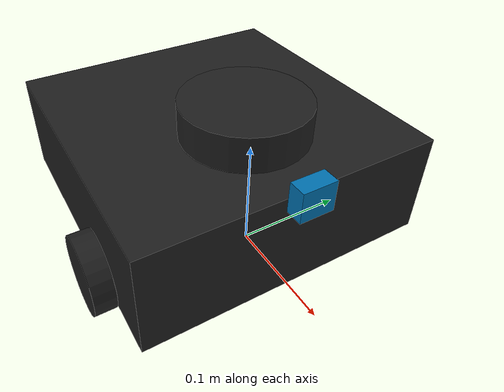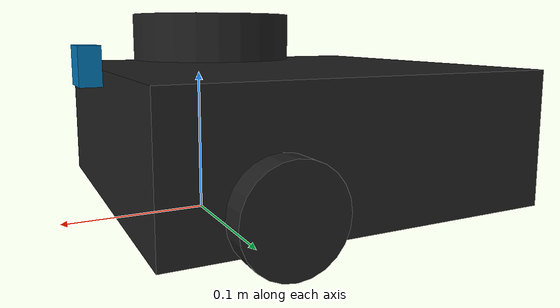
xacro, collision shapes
<?xml version="1.0"?>
<!-- TurtleBot3 Manipulation -->
<robot name="turtlebot3_manipulation" xmlns:xacro="http://ros.org/wiki/xacro">
  <xacro:arg name="gazebo" default="True"/>
  <xacro:arg name="offroad_turtlebot" default="False"/>
  <xacro:arg name="scale_factor" default="1.0"/>
  <xacro:property name="sf" value="$(arg scale_factor)"/>

  <!--  TURTLEBOT3 WAFFLE PI  -->
  <xacro:include filename="$(find turtlebot3_manipulation_description)/urdf/turtlebot3_pi_base.xacro"/>

  <!--  TURTLEBOT3 WAFFLE PI Sensors (for whatever reason, IMU needs to be declared at end of file to prevent
  gazebo from crashing  -->
  <xacro:include filename="$(find turtlebot3_manipulation_description)/urdf/turtlebot3_pi_gazebo.xacro"/>

</robot>

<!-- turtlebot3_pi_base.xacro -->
<!-- TurtleBot3 Manipulation -->
<robot name="turtlebot3_pi" xmlns:xacro="http://ros.org/wiki/xacro">

  <!--  if gazebo=True, enable SDF specific tags  -->
  <xacro:arg name="gazebo" default="True"/>
  <xacro:arg name="offroad_turtlebot" default="False"/>
  <xacro:arg name="scale_factor" default="1.0"/>
  <xacro:property name="sf" value="$(arg scale_factor)"/>

  <!--  Begin Model Description  -->
  <link name="base_footprint"/>
  <link name="base_link">
    <visual>
      <origin xyz="-0.064 0 0.0" rpy="0 0 0"/>
      <geometry>
        <mesh filename="file://$(find turtlebot3_description)/meshes/bases/waffle_pi_base.stl" scale="0.001 0.001 0.001"/>
      </geometry>
      <material name="light_black"/>
    </visual>

    <collision>
      <origin xyz="-0.064 0 0.047" rpy="0 0 0"/>
      <geometry>
        <box size="0.266 0.266 0.094"/>
      </geometry>
    </collision>

    <inertial>
      <origin xyz="0 0 0" rpy="0 0 0"/>
      <mass value="1.3729096e+00"/>
      <inertia ixx="8.7002718e-03" ixy="-4.7576583e-05" ixz="1.1160499e-04"
               iyy="8.6195418e-03" iyz="-3.5422299e-06"
               izz="1.4612727e-02" />
    </inertial>
  </link>
  <joint name="base_joint" type="fixed">
    <parent link="base_footprint"/>
    <child link="base_link" />
    <origin xyz="0 0 0.010" rpy="0 0 0"/>
  </joint>

  <xacro:if value="$(arg offroad_turtlebot)">
    <link name="wheel_left_link">
      <visual>
        <origin xyz="0 0 0" rpy="1.57 0 0"/>
        <geometry>
          <mesh filename="file://$(find turtlebot3_description)/meshes/wheels/left_tire.stl" scale="${0.001 * sf} ${0.001 * sf} ${0.001 * sf}"/>
        </geometry>
        <material name="dark"/>
      </visual>

      <collision>
        <origin xyz="0 0 0" rpy="0 0 0"/>
        <geometry>
          <cylinder length="${0.018 * sf}" radius="${sf * 0.033}"/>
        </geometry>
      </collision>

      <inertial>
        <origin xyz="0 0 0" />
        <mass value="${sf**3 * 2.8498940e-02}" />
        <inertia ixx="${sf**3 * 1.1175580e-05}" ixy="${sf**3 * -4.2369783e-11}" ixz="${sf**3 * -5.9381719e-09}"
                 iyy="${sf**3 * 1.1192413e-05}" iyz="${sf**3 * -1.4400107e-11}"
                 izz="${sf**3 * 2.0712558e-05}" />
        </inertial>
    </link>
    <joint name="wheel_left_joint" type="continuous">
      <parent link="base_link"/>
      <child link="wheel_left_link"/>
      <origin xyz="0.0 0.144 0.023" rpy="-1.57 0 0"/>
      <axis xyz="0 0 1"/>
      <xacro:if value="$(arg gazebo)">
        <dynamics damping="0.2" friction="0.5"/>
      </xacro:if>
    </joint>

    <link name="wheel_right_link">
      <visual>
        <origin xyz="0 0 0" rpy="1.57 0 0"/>
        <geometry>
          <mesh filename="file://$(find turtlebot3_description)/meshes/wheels/left_tire.stl" scale="${0.001 * sf} ${0.001 * sf} ${0.001 * sf}"/>
        </geometry>
        <material name="dark"/>
      </visual>

      <collision>
        <origin xyz="0 0 0" rpy="0 0 0"/>
        <geometry>
          <cylinder length="${0.018 * sf}" radius="${sf * 0.033}"/>
        </geometry>
      </collision>

      <inertial>
        <origin xyz="0 0 0" />
        <mass value="${sf**3 * 2.8498940e-02}" />
        <inertia ixx="${sf**3 * 1.1175580e-05}" ixy="${sf**3 * -4.2369783e-11}" ixz="${sf**3 * -5.9381719e-09}"
                 iyy="${sf**3 * 1.1192413e-05}" iyz="${sf**3 * -1.4400107e-11}"
                 izz="${sf**3 * 2.0712558e-05}" />
        </inertial>
    </link>
    <joint name="wheel_right_joint" type="continuous">
      <parent link="base_link"/>
      <child link="wheel_right_link"/>
      <origin xyz="0.0 -0.144 0.023" rpy="-1.57 0 0"/>
      <axis xyz="0 0 1"/>
      <xacro:if value="$(arg gazebo)">
        <dynamics damping="0.2" friction="0.5"/>
      </xacro:if>
    </joint>

    <link name="caster_back_right_link">

      <visual>
        <origin xyz="0 0 0" rpy="0 0 0"/>
        <geometry>
          <sphere radius="${0.033 * sf - 0.028}"/>
        </geometry>
      </visual>

      <collision>
        <origin xyz="0 0 0" rpy="0 0 0"/>
        <geometry>
          <sphere radius="${0.033 * sf - 0.028}"/>
        </geometry>
      </collision>

      <inertial>
        <origin xyz="0 0 0" />
        <mass value="${sf**3 * 0.005}" />
        <inertia ixx="${sf**3 * 0.001}" ixy="${sf**3 * 0.0}" ixz="${sf**3 * 0.0}"
                 iyy="${sf**3 * 0.001}" iyz="${sf**3 * 0.0}"
                 izz="${sf**3 * 0.001}" />
      </inertial>
    </link>
    <xacro:if value="$(arg gazebo)">
      <!-- Represent ball joint by 2 additional links and joints   -->
      <link name="caster_back_right_link_proxy1">
        <inertial>
          <origin xyz="0 0 0" />
          <mass value="0.005" />
          <inertia ixx="0.001" ixy="0.0" ixz="0.0"
                   iyy="0.001" iyz="0.0"
                   izz="0.001" />
        </inertial>
      </link>

      <link name="caster_back_right_link_proxy2">
        <inertial>
          <origin xyz="0 0 0" />
          <mass value="0.005" />
          <inertia ixx="0.001" ixy="0.0" ixz="0.0"
                   iyy="0.001" iyz="0.0"
                   izz="0.001" />
        </inertial>
      </link>

      <joint name="caster_back_right_joint_x" type="continuous">
        <parent link="base_link"/>
        <child link="caster_back_right_link_proxy1"/>
        <origin xyz="-0.177 -0.064 -0.005" rpy="-1.57 0 0"/>
        <axis xyz="1 0 0"/>
        <dynamics damping="0.1" friction="0.2"/>
      </joint>
      <joint name="caster_back_right_joint_y" type="continuous">
        <parent link="caster_back_right_link_proxy1"/>
        <child link="caster_back_right_link_proxy2"/>
        <origin xyz="0 0 0" rpy="0 0 0"/>
        <axis xyz="0 1 0"/>
        <dynamics damping="0.1" friction="0.2"/>
      </joint>
      <joint name="caster_back_right_joint_z" type="continuous">
        <parent link="caster_back_right_link_proxy2"/>
        <child link="caster_back_right_link"/>
        <origin xyz="0 0 0" rpy="0 0 0"/>
        <axis xyz="0 0 1"/>
       <dynamics damping="0.1" friction="0.2"/>
      </joint>
    </xacro:if>

    <xacro:if value="${not $(arg gazebo)}">
      <joint name="caster_back_right_joint" type="fixed">
        <parent link="base_link"/>
        <child link="caster_back_right_link"/>
        <origin xyz="-0.177 -0.064 -0.004" rpy="-1.57 0 0"/>
      </joint>
    </xacro:if>

    <link name="caster_back_left_link">

      <visual>
        <origin xyz="0 0 0" rpy="0 0 0"/>
        <geometry>
          <sphere radius="${0.033 * sf - 0.028}"/>
        </geometry>
      </visual>

      <collision>
        <origin xyz="0 0 0" rpy="0 0 0"/>
        <geometry>
          <sphere radius="${0.033 * sf - 0.028}"/>
        </geometry>
      </collision>

      <inertial>
        <origin xyz="0 0 0" />
        <mass value="${sf**3 * 0.005}" />
        <inertia ixx="${sf**3 * 0.001}" ixy="${sf**3 * 0.0}" ixz="${sf**3 * 0.0}"
                 iyy="${sf**3 * 0.001}" iyz="${sf**3 * 0.0}"
                 izz="${sf**3 * 0.001}" />
      </inertial>
    </link>
    <xacro:if value="$(arg gazebo)">
      <!-- Represent ball joint by 2 additional links and joints   -->
      <link name="caster_back_left_link_proxy1">
        <inertial>
          <origin xyz="0 0 0" />
          <mass value="0.005" />
          <inertia ixx="0.001" ixy="0.0" ixz="0.0"
                   iyy="0.001" iyz="0.0"
                   izz="0.001" />
        </inertial>
      </link>

      <link name="caster_back_left_link_proxy2">
        <inertial>
          <origin xyz="0 0 0" />
          <mass value="0.005" />
          <inertia ixx="0.001" ixy="0.0" ixz="0.0"
                   iyy="0.001" iyz="0.0"
                   izz="0.001" />
        </inertial>
      </link>

      <joint name="caster_back_left_joint_x" type="continuous">
        <parent link="base_link"/>
        <child link="caster_back_left_link_proxy1"/>
        <origin xyz="-0.177 0.064 -0.005" rpy="-1.57 0 0"/>
        <axis xyz="1 0 0"/>
        <dynamics damping="0.1" friction="0.2"/>
      </joint>
      <joint name="caster_back_left_joint_y" type="continuous">
        <parent link="caster_back_left_link_proxy1"/>
        <child link="caster_back_left_link_proxy2"/>
        <origin xyz="0 0 0" rpy="0 0 0"/>
        <axis xyz="0 1 0"/>
        <dynamics damping="0.1" friction="0.2"/>
      </joint>
      <joint name="caster_back_left_joint_z" type="continuous">
        <parent link="caster_back_left_link_proxy2"/>
        <child link="caster_back_left_link"/>
        <origin xyz="0 0 0" rpy="0 0 0"/>
        <axis xyz="0 0 1"/>
        <dynamics damping="0.1" friction="0.2"/>
      </joint>
    </xacro:if>

    <xacro:if value="${not $(arg gazebo)}">
      <joint name="caster_back_left_joint" type="fixed">
        <parent link="base_link"/>
        <child link="caster_back_left_link"/>
        <origin xyz="-0.177 0.064 -0.004" rpy="-1.57 0 0"/>
      </joint>
    </xacro:if>

  </xacro:if>

  <xacro:if value="${not $(arg offroad_turtlebot)}">
    <link name="wheel_left_link">
      <visual>
        <origin xyz="0 0 0" rpy="1.57 0 0"/>
        <geometry>
          <mesh filename="file://$(find turtlebot3_description)/meshes/wheels/left_tire.stl" scale="0.001 0.001 0.001"/>
        </geometry>
        <material name="dark"/>
      </visual>

      <collision>
        <origin xyz="0 0 0" rpy="0 0 0"/>
        <geometry>
          <cylinder length="0.018" radius="0.033"/>
        </geometry>
      </collision>

      <inertial>
        <origin xyz="0 0 0" />
        <mass value="2.8498940e-02" />
        <inertia ixx="1.1175580e-05" ixy="-4.2369783e-11" ixz="-5.9381719e-09"
                 iyy="1.1192413e-05" iyz="-1.4400107e-11"
                 izz="2.0712558e-05" />
        </inertial>
    </link>
    <joint name="wheel_left_joint" type="continuous">
      <parent link="base_link"/>
      <child link="wheel_left_link"/>
      <origin xyz="0.0 0.144 0.023" rpy="-1.57 0 0"/>
      <axis xyz="0 0 1"/>
      <xacro:if value="$(arg gazebo)">
        <dynamics damping="0.2" friction="0.5"/>
      </xacro:if>
    </joint>

    <link name="wheel_right_link">
      <visual>
        <origin xyz="0 0 0" rpy="1.57 0 0"/>
        <geometry>
          <mesh filename="file://$(find turtlebot3_description)/meshes/wheels/right_tire.stl" scale="0.001 0.001 0.001"/>
        </geometry>
        <material name="dark"/>
      </visual>

      <collision>
        <origin xyz="0 0 0" rpy="0 0 0"/>
        <geometry>
          <cylinder length="0.018" radius="0.033"/>
        </geometry>
      </collision>

      <inertial>
        <origin xyz="0 0 0" />
        <mass value="2.8498940e-02" />
        <inertia ixx="1.1175580e-05" ixy="-4.2369783e-11" ixz="-5.9381719e-09"
                 iyy="1.1192413e-05" iyz="-1.4400107e-11"
                 izz="2.0712558e-05" />
        </inertial>
    </link>
    <joint name="wheel_right_joint" type="continuous">
      <parent link="base_link"/>
      <child link="wheel_right_link"/>
      <origin xyz="0.0 -0.144 0.023" rpy="-1.57 0 0"/>
      <axis xyz="0 0 1"/>
      <xacro:if value="$(arg gazebo)">
        <dynamics damping="0.2" friction="0.5"/>
      </xacro:if>
    </joint>

    <link name="caster_back_right_link">

      <visual>
        <origin xyz="0 0 0" rpy="0 0 0"/>
        <geometry>
          <sphere radius="0.005"/>
        </geometry>
      </visual>

      <collision>
        <origin xyz="0 0 0" rpy="0 0 0"/>
        <geometry>
          <sphere radius="0.005"/>
        </geometry>
      </collision>

      <inertial>
        <origin xyz="0 0 0" />
        <mass value="0.005" />
        <inertia ixx="0.001" ixy="0.0" ixz="0.0"
                 iyy="0.001" iyz="0.0"
                 izz="0.001" />
      </inertial>
    </link>
    <xacro:if value="$(arg gazebo)">
      <!-- Represent ball joint by 2 additional links and joints   -->
      <link name="caster_back_right_link_proxy1">
        <inertial>
          <origin xyz="0 0 0" />
          <mass value="0.005" />
          <inertia ixx="0.001" ixy="0.0" ixz="0.0"
                   iyy="0.001" iyz="0.0"
                   izz="0.001" />
        </inertial>
      </link>

      <link name="caster_back_right_link_proxy2">
        <inertial>
          <origin xyz="0 0 0" />
          <mass value="0.005" />
          <inertia ixx="0.001" ixy="0.0" ixz="0.0"
                   iyy="0.001" iyz="0.0"
                   izz="0.001" />
        </inertial>
      </link>

      <joint name="caster_back_right_joint_x" type="continuous">
        <parent link="base_link"/>
        <child link="caster_back_right_link_proxy1"/>
        <origin xyz="-0.177 -0.064 -0.005" rpy="-1.57 0 0"/>
        <axis xyz="1 0 0"/>
        <dynamics damping="0.1" friction="0.2"/>
      </joint>
      <joint name="caster_back_right_joint_y" type="continuous">
        <parent link="caster_back_right_link_proxy1"/>
        <child link="caster_back_right_link_proxy2"/>
        <origin xyz="0 0 0" rpy="0 0 0"/>
        <axis xyz="0 1 0"/>
        <dynamics damping="0.1" friction="0.2"/>
      </joint>
      <joint name="caster_back_right_joint_z" type="continuous">
        <parent link="caster_back_right_link_proxy2"/>
        <child link="caster_back_right_link"/>
        <origin xyz="0 0 0" rpy="0 0 0"/>
        <axis xyz="0 0 1"/>
       <dynamics damping="0.1" friction="0.2"/>
      </joint>
    </xacro:if>

    <xacro:if value="${not $(arg gazebo)}">
      <joint name="caster_back_right_joint" type="fixed">
        <parent link="base_link"/>
        <child link="caster_back_right_link"/>
        <origin xyz="-0.177 -0.064 -0.004" rpy="-1.57 0 0"/>
      </joint>
    </xacro:if>

    <link name="caster_back_left_link">

      <visual>
        <origin xyz="0 0 0" rpy="0 0 0"/>
        <geometry>
          <sphere radius="0.005"/>
        </geometry>
      </visual>

      <collision>
        <origin xyz="0 0 0" rpy="0 0 0"/>
        <geometry>
          <sphere radius="0.005"/>
        </geometry>
      </collision>

      <inertial>
        <origin xyz="0 0 0" />
        <mass value="0.005" />
        <inertia ixx="0.001" ixy="0.0" ixz="0.0"
                 iyy="0.001" iyz="0.0"
                 izz="0.001" />
      </inertial>
    </link>
    <xacro:if value="$(arg gazebo)">
      <!-- Represent ball joint by 2 additional links and joints   -->
      <link name="caster_back_left_link_proxy1">
        <inertial>
          <origin xyz="0 0 0" />
          <mass value="0.005" />
          <inertia ixx="0.001" ixy="0.0" ixz="0.0"
                   iyy="0.001" iyz="0.0"
                   izz="0.001" />
        </inertial>
      </link>

      <link name="caster_back_left_link_proxy2">
        <inertial>
          <origin xyz="0 0 0" />
          <mass value="0.005" />
          <inertia ixx="0.001" ixy="0.0" ixz="0.0"
                   iyy="0.001" iyz="0.0"
                   izz="0.001" />
        </inertial>
      </link>

      <joint name="caster_back_left_joint_x" type="continuous">
        <parent link="base_link"/>
        <child link="caster_back_left_link_proxy1"/>
        <origin xyz="-0.177 0.064 -0.005" rpy="-1.57 0 0"/>
        <axis xyz="1 0 0"/>
        <dynamics damping="0.1" friction="0.2"/>
      </joint>
      <joint name="caster_back_left_joint_y" type="continuous">
        <parent link="caster_back_left_link_proxy1"/>
        <child link="caster_back_left_link_proxy2"/>
        <origin xyz="0 0 0" rpy="0 0 0"/>
        <axis xyz="0 1 0"/>
        <dynamics damping="0.1" friction="0.2"/>
      </joint>
      <joint name="caster_back_left_joint_z" type="continuous">
        <parent link="caster_back_left_link_proxy2"/>
        <child link="caster_back_left_link"/>
        <origin xyz="0 0 0" rpy="0 0 0"/>
        <axis xyz="0 0 1"/>
        <dynamics damping="0.1" friction="0.2"/>
      </joint>
    </xacro:if>

    <xacro:if value="${not $(arg gazebo)}">
      <joint name="caster_back_left_joint" type="fixed">
        <parent link="base_link"/>
        <child link="caster_back_left_link"/>
        <origin xyz="-0.177 0.064 -0.004" rpy="-1.57 0 0"/>
      </joint>
    </xacro:if>

  </xacro:if>

  <link name="imu_link"/>
  <joint name="imu_joint" type="fixed">
    <parent link="base_link"/>
    <child link="imu_link"/>
    <origin xyz="0.0 0 0.068" rpy="0 0 0"/>
  </joint>

  <link name="base_scan">
    <visual>
      <origin xyz="0 0 0" rpy="0 0 0"/>
      <geometry>
        <mesh filename="file://$(find turtlebot3_description)/meshes/sensors/lds.stl" scale="0.001 0.001 0.001"/>
      </geometry>
      <material name="dark"/>
    </visual>

    <collision>
      <origin xyz="0.015 0 -0.0065" rpy="0 0 0"/>
      <geometry>
        <cylinder length="0.0315" radius="0.055"/>
      </geometry>
    </collision>

    <inertial>
      <mass value="0.114" />
      <origin xyz="-0.052 0 0.111" />
      <inertia ixx="0.001" ixy="0.0" ixz="0.0"
               iyy="0.001" iyz="0.0"
               izz="0.001" />
    </inertial>
  </link>
  <joint name="scan_joint" type="fixed">
    <parent link="base_link"/>
    <child link="base_scan"/>
    <origin xyz="-0.025 0 0.122" rpy="0 0 0"/>
  </joint>

  <link name="camera_link">
    <inertial>
      <mass value="0.035" />
      <origin xyz="0 0 0" />
      <inertia ixx="0.001" ixy="0.0" ixz="0.0"
               iyy="0.001" iyz="0.0"
               izz="0.001" />
    </inertial>
    <collision>
      <origin xyz="0.005 0.011 0.013" rpy="0 0 0"/>
      <geometry>
        <box size="0.015 0.030 0.027"/>
      </geometry>
    </collision>
  </link>
  <link name="camera_rgb_optical_frame">
    <inertial>
      <mass value="0.035" />
      <origin xyz="0 0 0" />
      <inertia ixx="0.001" ixy="0.0" ixz="0.0"
               iyy="0.001" iyz="0.0"
               izz="0.001" />
    </inertial>
  </link>
  <joint name="camera_joint" type="fixed">
    <origin xyz="0.073 -0.011 0.084" rpy="0 0 0"/>
    <axis xyz="0 0 1"/>
    <parent link="base_link"/>
    <child link="camera_link"/>
  </joint>

  <joint name="camera_rgb_optical_joint" type="fixed">
    <origin xyz="0.003 0.011 0.009" rpy="0 0 0"/>
    <parent link="camera_link"/>
    <child link="camera_rgb_optical_frame"/>
  </joint>

</robot>
